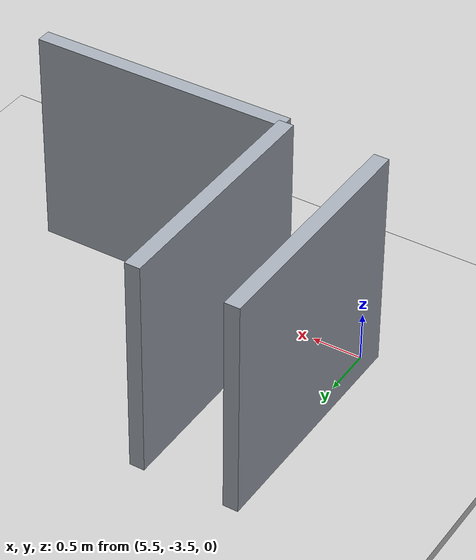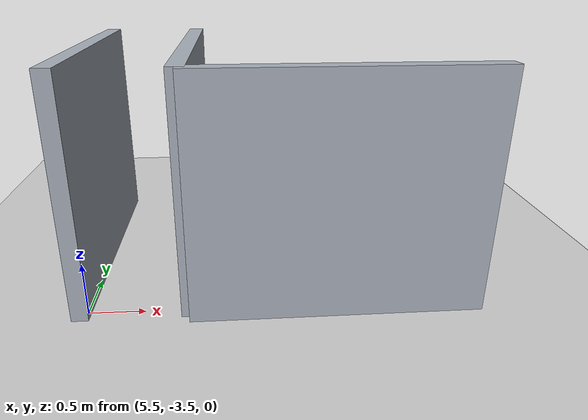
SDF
<sdf version="1.9">
 <world name="default">
  <model name="ground_plane">
   <static>true</static>
   <pose>4.85 0 -0.05 0 0 0</pose>
   <link name="body">
    <collision name="collision"><geometry><box><size>13.7 12 0.1</size></box></geometry></collision>
    <visual name="visual">
     <geometry><box><size>13.7 12 0.1</size></box></geometry>
     <material><ambient>0.8 0.8 0.8 1</ambient><diffuse>0.8 0.8 0.8 1</diffuse></material>
    </visual>
   </link>
  </model>
  <model name="room_-1_1_1">
   <static>true</static>
   <pose>5.45 -2.4 1.1 0 0 0</pose>
   <link name="body">
    <collision name="collision"><geometry><box><size>0.15 2.4 2.2</size></box></geometry></collision>
    <visual name="visual">
     <geometry><box><size>0.15 2.4 2.2</size></box></geometry>
     <material><ambient>0.65 0.68 0.72 1</ambient><diffuse>0.65 0.68 0.72 1</diffuse></material>
    </visual>
   </link>
  </model>
  <model name="room_-1_2_-1">
   <static>true</static>
   <pose>6.4 -2.4 1.1 0 0 0</pose>
   <link name="body">
    <collision name="collision"><geometry><box><size>0.15 2.4 2.2</size></box></geometry></collision>
    <visual name="visual">
     <geometry><box><size>0.15 2.4 2.2</size></box></geometry>
     <material><ambient>0.65 0.68 0.72 1</ambient><diffuse>0.65 0.68 0.72 1</diffuse></material>
    </visual>
   </link>
  </model>
  <model name="room_end_-1_2">
   <static>true</static>
   <pose>7.7 -3.5999999999999996 1.1 0 0 0</pose>
   <link name="body">
    <collision name="collision"><geometry><box><size>2.6 0.15 2.2</size></box></geometry></collision>
    <visual name="visual">
     <geometry><box><size>2.6 0.15 2.2</size></box></geometry>
     <material><ambient>0.65 0.68 0.72 1</ambient><diffuse>0.65 0.68 0.72 1</diffuse></material>
    </visual>
   </link>
  </model>
 </world>
</sdf>
